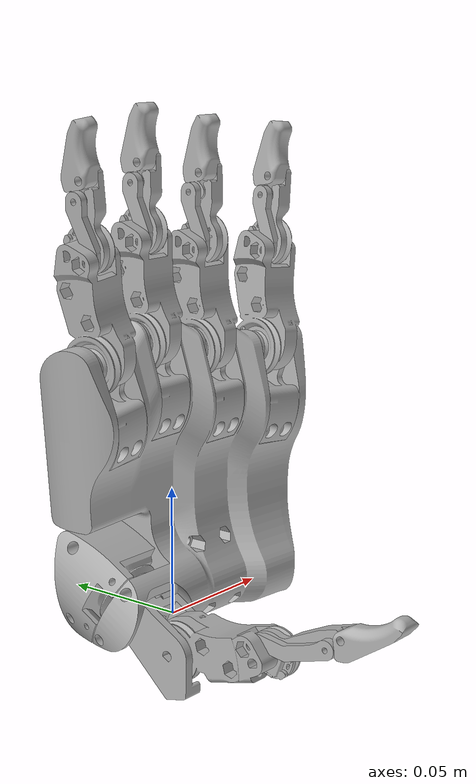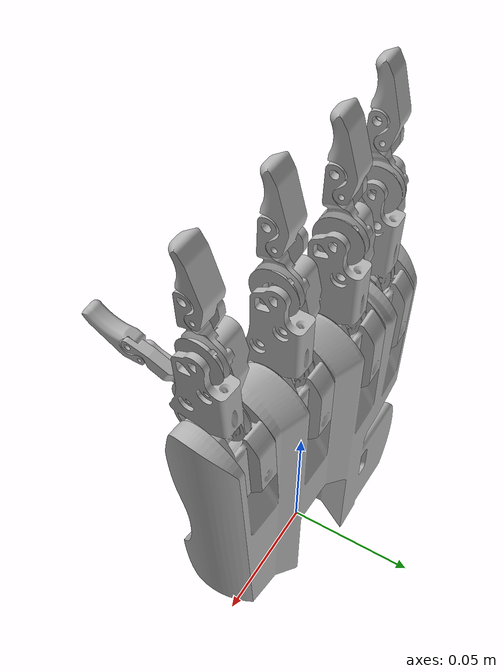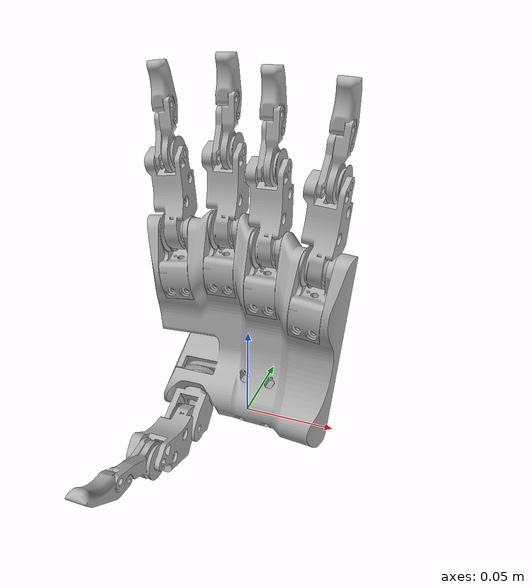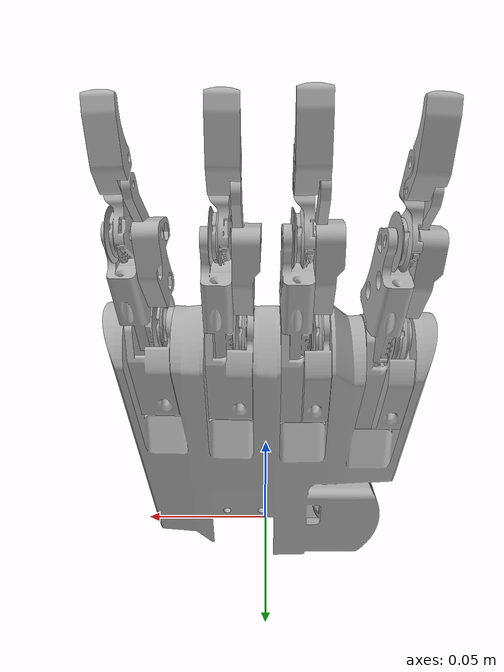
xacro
<?xml version="1.0" ?>
<robot name="New_URDF_export" xmlns:xacro="http://www.ros.org/wiki/xacro">

<xacro:include filename="$(find New_URDF_export_description)/urdf/materials.xacro" />
<xacro:include filename="$(find New_URDF_export_description)/urdf/New_URDF_export.trans" />
<xacro:include filename="$(find New_URDF_export_description)/urdf/New_URDF_export.gazebo" />
<link name="base_link">
  <inertial>
    <origin xyz="0.002745169725245046 -0.0008366364864162769 0.050206070448823796" rpy="0 0 0"/>
    <mass value="0.2414972480343464"/>
    <inertia ixx="0.000237" iyy="0.000426" izz="0.000234" ixy="3.4e-05" iyz="-7e-06" ixz="2.7e-05"/>
  </inertial>
  <visual>
    <origin xyz="0 0 0" rpy="0 0 0"/>
    <geometry>
      <mesh filename="package://New_URDF_export_description/meshes/base_link.stl" scale="0.001 0.001 0.001"/>
    </geometry>
    <material name="silver"/>
  </visual>
  <collision>
    <origin xyz="0 0 0" rpy="0 0 0"/>
    <geometry>
      <mesh filename="package://New_URDF_export_description/meshes/base_link.stl" scale="0.001 0.001 0.001"/>
    </geometry>
  </collision>
</link>

<link name="Component24_1">
  <inertial>
    <origin xyz="-0.002025427836878528 0.008912288892098434 0.012353450951799974" rpy="0 0 0"/>
    <mass value="0.012258638602964354"/>
    <inertia ixx="2e-06" iyy="1e-06" izz="1e-06" ixy="0.0" iyz="-0.0" ixz="0.0"/>
  </inertial>
  <visual>
    <origin xyz="0.03682 0.005982 -0.074" rpy="0 0 0"/>
    <geometry>
      <mesh filename="package://New_URDF_export_description/meshes/Component24_1.stl" scale="0.001 0.001 0.001"/>
    </geometry>
    <material name="silver"/>
  </visual>
  <collision>
    <origin xyz="0.03682 0.005982 -0.074" rpy="0 0 0"/>
    <geometry>
      <mesh filename="package://New_URDF_export_description/meshes/Component24_1.stl" scale="0.001 0.001 0.001"/>
    </geometry>
  </collision>
</link>

<link name="Component25_1">
  <inertial>
    <origin xyz="-0.00047467160594175453 0.00903509191680997 0.012421508407421775" rpy="0 0 0"/>
    <mass value="0.012258632723785344"/>
    <inertia ixx="2e-06" iyy="1e-06" izz="1e-06" ixy="0.0" iyz="-0.0" ixz="-0.0"/>
  </inertial>
  <visual>
    <origin xyz="0.012395 0.004776 -0.079" rpy="0 0 0"/>
    <geometry>
      <mesh filename="package://New_URDF_export_description/meshes/Component25_1.stl" scale="0.001 0.001 0.001"/>
    </geometry>
    <material name="silver"/>
  </visual>
  <collision>
    <origin xyz="0.012395 0.004776 -0.079" rpy="0 0 0"/>
    <geometry>
      <mesh filename="package://New_URDF_export_description/meshes/Component25_1.stl" scale="0.001 0.001 0.001"/>
    </geometry>
  </collision>
</link>

<link name="Component1_1">
  <inertial>
    <origin xyz="0.004123666960496847 0.0011067029414736289 0.01723038194941895" rpy="0 0 0"/>
    <mass value="0.011115907596850922"/>
    <inertia ixx="2e-06" iyy="2e-06" izz="1e-06" ixy="0.0" iyz="-0.0" ixz="0.0"/>
  </inertial>
  <visual>
    <origin xyz="0.045725 0.001547 -0.104372" rpy="0 0 0"/>
    <geometry>
      <mesh filename="package://New_URDF_export_description/meshes/Component1_1.stl" scale="0.001 0.001 0.001"/>
    </geometry>
    <material name="silver"/>
  </visual>
  <collision>
    <origin xyz="0.045725 0.001547 -0.104372" rpy="0 0 0"/>
    <geometry>
      <mesh filename="package://New_URDF_export_description/meshes/Component1_1.stl" scale="0.001 0.001 0.001"/>
    </geometry>
  </collision>
</link>

<link name="Component3_1">
  <inertial>
    <origin xyz="-0.0036945196042365014 -0.0016865936108732698 0.0046870721481248045" rpy="0 0 0"/>
    <mass value="0.0019033331833639964"/>
    <inertia ixx="1e-06" iyy="1e-06" izz="1e-06" ixy="-0.0" iyz="0.0" ixz="0.0"/>
  </inertial>
  <visual>
    <origin xyz="0.038333 -0.001675 -0.145192" rpy="0 0 0"/>
    <geometry>
      <mesh filename="package://New_URDF_export_description/meshes/Component3_1.stl" scale="0.001 0.001 0.001"/>
    </geometry>
    <material name="silver"/>
  </visual>
  <collision>
    <origin xyz="0.038333 -0.001675 -0.145192" rpy="0 0 0"/>
    <geometry>
      <mesh filename="package://New_URDF_export_description/meshes/Component3_1.stl" scale="0.001 0.001 0.001"/>
    </geometry>
  </collision>
</link>

<link name="Component4_1">
  <inertial>
    <origin xyz="0.0006578043440388093 0.002756298934102463 0.01152316144300558" rpy="0 0 0"/>
    <mass value="0.0005553551144173429"/>
    <inertia ixx="1e-06" iyy="1e-06" izz="1e-06" ixy="0.0" iyz="-0.0" ixz="0.0"/>
  </inertial>
  <visual>
    <origin xyz="0.048197 0.004381 -0.1414" rpy="0 0 0"/>
    <geometry>
      <mesh filename="package://New_URDF_export_description/meshes/Component4_1.stl" scale="0.001 0.001 0.001"/>
    </geometry>
    <material name="silver"/>
  </visual>
  <collision>
    <origin xyz="0.048197 0.004381 -0.1414" rpy="0 0 0"/>
    <geometry>
      <mesh filename="package://New_URDF_export_description/meshes/Component4_1.stl" scale="0.001 0.001 0.001"/>
    </geometry>
  </collision>
</link>

<link name="Component2_1">
  <inertial>
    <origin xyz="-0.0027029859176378873 0.0015940781015286818 0.005832015574820604" rpy="0 0 0"/>
    <mass value="0.002314232689912895"/>
    <inertia ixx="1e-06" iyy="1e-06" izz="1e-06" ixy="-0.0" iyz="0.0" ixz="0.0"/>
  </inertial>
  <visual>
    <origin xyz="0.043365 0.001935 -0.169617" rpy="0 0 0"/>
    <geometry>
      <mesh filename="package://New_URDF_export_description/meshes/Component2_1.stl" scale="0.001 0.001 0.001"/>
    </geometry>
    <material name="silver"/>
  </visual>
  <collision>
    <origin xyz="0.043365 0.001935 -0.169617" rpy="0 0 0"/>
    <geometry>
      <mesh filename="package://New_URDF_export_description/meshes/Component2_1.stl" scale="0.001 0.001 0.001"/>
    </geometry>
  </collision>
</link>

<link name="Component6_1">
  <inertial>
    <origin xyz="0.00566097044583895 0.0009279303593809061 0.01679880692646306" rpy="0 0 0"/>
    <mass value="0.011115905659210518"/>
    <inertia ixx="2e-06" iyy="2e-06" izz="1e-06" ixy="-0.0" iyz="-0.0" ixz="0.0"/>
  </inertial>
  <visual>
    <origin xyz="0.018401 -0.001121 -0.10823" rpy="0 0 0"/>
    <geometry>
      <mesh filename="package://New_URDF_export_description/meshes/Component6_1.stl" scale="0.001 0.001 0.001"/>
    </geometry>
    <material name="silver"/>
  </visual>
  <collision>
    <origin xyz="0.018401 -0.001121 -0.10823" rpy="0 0 0"/>
    <geometry>
      <mesh filename="package://New_URDF_export_description/meshes/Component6_1.stl" scale="0.001 0.001 0.001"/>
    </geometry>
  </collision>
</link>

<link name="Component7_1">
  <inertial>
    <origin xyz="-0.003330077463916883 -0.002411105311378465 0.00677198635006096" rpy="0 0 0"/>
    <mass value="0.0019033352750190097"/>
    <inertia ixx="1e-06" iyy="1e-06" izz="1e-06" ixy="0.0" iyz="0.0" ixz="-0.0"/>
  </inertial>
  <visual>
    <origin xyz="0.007348 -0.004975 -0.14646" rpy="0 0 0"/>
    <geometry>
      <mesh filename="package://New_URDF_export_description/meshes/Component7_1.stl" scale="0.001 0.001 0.001"/>
    </geometry>
    <material name="silver"/>
  </visual>
  <collision>
    <origin xyz="0.007348 -0.004975 -0.14646" rpy="0 0 0"/>
    <geometry>
      <mesh filename="package://New_URDF_export_description/meshes/Component7_1.stl" scale="0.001 0.001 0.001"/>
    </geometry>
  </collision>
</link>

<link name="Component8_1">
  <inertial>
    <origin xyz="0.0014771000853101325 0.0018048088171991965 0.013173422015586855" rpy="0 0 0"/>
    <mass value="0.0005553551398376143"/>
    <inertia ixx="1e-06" iyy="1e-06" izz="1e-06" ixy="-0.0" iyz="-0.0" ixz="-0.0"/>
  </inertial>
  <visual>
    <origin xyz="0.017807 0.000565 -0.143581" rpy="0 0 0"/>
    <geometry>
      <mesh filename="package://New_URDF_export_description/meshes/Component8_1.stl" scale="0.001 0.001 0.001"/>
    </geometry>
    <material name="silver"/>
  </visual>
  <collision>
    <origin xyz="0.017807 0.000565 -0.143581" rpy="0 0 0"/>
    <geometry>
      <mesh filename="package://New_URDF_export_description/meshes/Component8_1.stl" scale="0.001 0.001 0.001"/>
    </geometry>
  </collision>
</link>

<link name="Component5_1">
  <inertial>
    <origin xyz="-0.0020740129128638523 0.0008162221421355227 0.007803938698609875" rpy="0 0 0"/>
    <mass value="0.0023142301158833177"/>
    <inertia ixx="1e-06" iyy="1e-06" izz="1e-06" ixy="-0.0" iyz="0.0" ixz="0.0"/>
  </inertial>
  <visual>
    <origin xyz="0.010413 -0.001689 -0.171254" rpy="0 0 0"/>
    <geometry>
      <mesh filename="package://New_URDF_export_description/meshes/Component5_1.stl" scale="0.001 0.001 0.001"/>
    </geometry>
    <material name="silver"/>
  </visual>
  <collision>
    <origin xyz="0.010413 -0.001689 -0.171254" rpy="0 0 0"/>
    <geometry>
      <mesh filename="package://New_URDF_export_description/meshes/Component5_1.stl" scale="0.001 0.001 0.001"/>
    </geometry>
  </collision>
</link>

<link name="Component23_1">
  <inertial>
    <origin xyz="-2.0638533683621507e-06 0.009047541745378881 0.012421521638297225" rpy="0 0 0"/>
    <mass value="0.012258643235752422"/>
    <inertia ixx="2e-06" iyy="1e-06" izz="1e-06" ixy="0.0" iyz="-0.0" ixz="-0.0"/>
  </inertial>
  <visual>
    <origin xyz="-0.012244 0.010538 -0.074" rpy="0 0 0"/>
    <geometry>
      <mesh filename="package://New_URDF_export_description/meshes/Component23_1.stl" scale="0.001 0.001 0.001"/>
    </geometry>
    <material name="silver"/>
  </visual>
  <collision>
    <origin xyz="-0.012244 0.010538 -0.074" rpy="0 0 0"/>
    <geometry>
      <mesh filename="package://New_URDF_export_description/meshes/Component23_1.stl" scale="0.001 0.001 0.001"/>
    </geometry>
  </collision>
</link>

<link name="Component9_1">
  <inertial>
    <origin xyz="0.005701732164497237 0.0006306105204934537 0.016798808882961966" rpy="0 0 0"/>
    <mass value="0.011115903436385853"/>
    <inertia ixx="2e-06" iyy="2e-06" izz="1e-06" ixy="-0.0" iyz="-0.0" ixz="0.0"/>
  </inertial>
  <visual>
    <origin xyz="-0.006554 0.004335 -0.10323" rpy="0 0 0"/>
    <geometry>
      <mesh filename="package://New_URDF_export_description/meshes/Component9_1.stl" scale="0.001 0.001 0.001"/>
    </geometry>
    <material name="silver"/>
  </visual>
  <collision>
    <origin xyz="-0.006554 0.004335 -0.10323" rpy="0 0 0"/>
    <geometry>
      <mesh filename="package://New_URDF_export_description/meshes/Component9_1.stl" scale="0.001 0.001 0.001"/>
    </geometry>
  </collision>
</link>

<link name="Component11_1">
  <inertial>
    <origin xyz="-0.003451516209980696 -0.002233278304004958 0.006772092134296276" rpy="0 0 0"/>
    <mass value="0.0019033302628551495"/>
    <inertia ixx="1e-06" iyy="1e-06" izz="1e-06" ixy="-0.0" iyz="0.0" ixz="-0.0"/>
  </inertial>
  <visual>
    <origin xyz="-0.017741 0.003063 -0.141526" rpy="0 0 0"/>
    <geometry>
      <mesh filename="package://New_URDF_export_description/meshes/Component11_1.stl" scale="0.001 0.001 0.001"/>
    </geometry>
    <material name="silver"/>
  </visual>
  <collision>
    <origin xyz="-0.017741 0.003063 -0.141526" rpy="0 0 0"/>
    <geometry>
      <mesh filename="package://New_URDF_export_description/meshes/Component11_1.stl" scale="0.001 0.001 0.001"/>
    </geometry>
  </collision>
</link>

<link name="Component12_1">
  <inertial>
    <origin xyz="0.0019193155174742028 0.0017153164675866401 0.013173421980118394" rpy="0 0 0"/>
    <mass value="0.0005553551425762632"/>
    <inertia ixx="1e-06" iyy="1e-06" izz="1e-06" ixy="-0.0" iyz="-0.0" ixz="-0.0"/>
  </inertial>
  <visual>
    <origin xyz="-0.007059 0.006049 -0.138581" rpy="0 0 0"/>
    <geometry>
      <mesh filename="package://New_URDF_export_description/meshes/Component12_1.stl" scale="0.001 0.001 0.001"/>
    </geometry>
    <material name="silver"/>
  </visual>
  <collision>
    <origin xyz="-0.007059 0.006049 -0.138581" rpy="0 0 0"/>
    <geometry>
      <mesh filename="package://New_URDF_export_description/meshes/Component12_1.stl" scale="0.001 0.001 0.001"/>
    </geometry>
  </collision>
</link>

<link name="Component10_1">
  <inertial>
    <origin xyz="-0.0019760427506178378 0.002921812974273479 0.007738009794912598" rpy="0 0 0"/>
    <mass value="0.002314230055006617"/>
    <inertia ixx="1e-06" iyy="1e-06" izz="1e-06" ixy="-0.0" iyz="0.0" ixz="0.0"/>
  </inertial>
  <visual>
    <origin xyz="-0.014456 0.008182 -0.166386" rpy="0 0 0"/>
    <geometry>
      <mesh filename="package://New_URDF_export_description/meshes/Component10_1.stl" scale="0.001 0.001 0.001"/>
    </geometry>
    <material name="silver"/>
  </visual>
  <collision>
    <origin xyz="-0.014456 0.008182 -0.166386" rpy="0 0 0"/>
    <geometry>
      <mesh filename="package://New_URDF_export_description/meshes/Component10_1.stl" scale="0.001 0.001 0.001"/>
    </geometry>
  </collision>
</link>

<link name="Component26_1">
  <inertial>
    <origin xyz="0.0017077083126936718 0.008921936521695406 0.012395043734201833" rpy="0 0 0"/>
    <mass value="0.012258648483931921"/>
    <inertia ixx="2e-06" iyy="1e-06" izz="1e-06" ixy="0.0" iyz="-0.0" ixz="-0.0"/>
  </inertial>
  <visual>
    <origin xyz="-0.036778 0.017064 -0.069" rpy="0 0 0"/>
    <geometry>
      <mesh filename="package://New_URDF_export_description/meshes/Component26_1.stl" scale="0.001 0.001 0.001"/>
    </geometry>
    <material name="silver"/>
  </visual>
  <collision>
    <origin xyz="-0.036778 0.017064 -0.069" rpy="0 0 0"/>
    <geometry>
      <mesh filename="package://New_URDF_export_description/meshes/Component26_1.stl" scale="0.001 0.001 0.001"/>
    </geometry>
  </collision>
</link>

<link name="Component13_1">
  <inertial>
    <origin xyz="0.007167652452317742 9.303680224181932e-05 0.016239452546972163" rpy="0 0 0"/>
    <mass value="0.011115905543319208"/>
    <inertia ixx="2e-06" iyy="2e-06" izz="1e-06" ixy="-0.0" iyz="-0.0" ixz="-0.0"/>
  </inertial>
  <visual>
    <origin xyz="-0.034157 0.011667 -0.100392" rpy="0 0 0"/>
    <geometry>
      <mesh filename="package://New_URDF_export_description/meshes/Component13_1.stl" scale="0.001 0.001 0.001"/>
    </geometry>
    <material name="silver"/>
  </visual>
  <collision>
    <origin xyz="-0.034157 0.011667 -0.100392" rpy="0 0 0"/>
    <geometry>
      <mesh filename="package://New_URDF_export_description/meshes/Component13_1.stl" scale="0.001 0.001 0.001"/>
    </geometry>
  </collision>
</link>

<link name="Component17_1">
  <inertial>
    <origin xyz="-0.0027656231817524343 -0.0011316368308406152 0.005252369213118613" rpy="0 0 0"/>
    <mass value="0.0019033246740478476"/>
    <inertia ixx="1e-06" iyy="1e-06" izz="1e-06" ixy="-0.0" iyz="0.0" ixz="-0.0"/>
  </inertial>
  <visual>
    <origin xyz="-0.048936 0.010446 -0.139268" rpy="0 0 0"/>
    <geometry>
      <mesh filename="package://New_URDF_export_description/meshes/Component17_1.stl" scale="0.001 0.001 0.001"/>
    </geometry>
    <material name="silver"/>
  </visual>
  <collision>
    <origin xyz="-0.048936 0.010446 -0.139268" rpy="0 0 0"/>
    <geometry>
      <mesh filename="package://New_URDF_export_description/meshes/Component17_1.stl" scale="0.001 0.001 0.001"/>
    </geometry>
  </collision>
</link>

<link name="Component18_1">
  <inertial>
    <origin xyz="0.0031050093271399043 0.0024096864286983315 0.011196454087814722" rpy="0 0 0"/>
    <mass value="0.0005553551392437952"/>
    <inertia ixx="1e-06" iyy="1e-06" izz="1e-06" ixy="-0.0" iyz="-0.0" ixz="-0.0"/>
  </inertial>
  <visual>
    <origin xyz="-0.037671 0.014649 -0.137324" rpy="0 0 0"/>
    <geometry>
      <mesh filename="package://New_URDF_export_description/meshes/Component18_1.stl" scale="0.001 0.001 0.001"/>
    </geometry>
    <material name="silver"/>
  </visual>
  <collision>
    <origin xyz="-0.037671 0.014649 -0.137324" rpy="0 0 0"/>
    <geometry>
      <mesh filename="package://New_URDF_export_description/meshes/Component18_1.stl" scale="0.001 0.001 0.001"/>
    </geometry>
  </collision>
</link>

<link name="Component16_1">
  <inertial>
    <origin xyz="-0.0016358581286405743 0.001967218457827354 0.006215753454319822" rpy="0 0 0"/>
    <mass value="0.00231422981504397"/>
    <inertia ixx="1e-06" iyy="1e-06" izz="1e-06" ixy="0.0" iyz="0.0" ixz="-0.0"/>
  </inertial>
  <visual>
    <origin xyz="-0.048251 0.013599 -0.16419" rpy="0 0 0"/>
    <geometry>
      <mesh filename="package://New_URDF_export_description/meshes/Component16_1.stl" scale="0.001 0.001 0.001"/>
    </geometry>
    <material name="silver"/>
  </visual>
  <collision>
    <origin xyz="-0.048251 0.013599 -0.16419" rpy="0 0 0"/>
    <geometry>
      <mesh filename="package://New_URDF_export_description/meshes/Component16_1.stl" scale="0.001 0.001 0.001"/>
    </geometry>
  </collision>
</link>

<link name="Component21_1">
  <inertial>
    <origin xyz="-0.00047480998905378297 -0.001597778345875104 -0.002161180387733535" rpy="0 0 0"/>
    <mass value="0.01141105059764941"/>
    <inertia ixx="3e-06" iyy="1e-06" izz="2e-06" ixy="-0.0" iyz="-1e-06" ixz="-0.0"/>
  </inertial>
  <visual>
    <origin xyz="0.027 0.010587 -0.01105" rpy="0 0 0"/>
    <geometry>
      <mesh filename="package://New_URDF_export_description/meshes/Component21_1.stl" scale="0.001 0.001 0.001"/>
    </geometry>
    <material name="silver"/>
  </visual>
  <collision>
    <origin xyz="0.027 0.010587 -0.01105" rpy="0 0 0"/>
    <geometry>
      <mesh filename="package://New_URDF_export_description/meshes/Component21_1.stl" scale="0.001 0.001 0.001"/>
    </geometry>
  </collision>
</link>

<link name="Component15_1">
  <inertial>
    <origin xyz="0.005669628334297228 -0.014763771795247582 0.004508016238325537" rpy="0 0 0"/>
    <mass value="0.011043346797995797"/>
    <inertia ixx="2e-06" iyy="1e-06" izz="2e-06" ixy="-0.0" iyz="0.0" ixz="0.0"/>
  </inertial>
  <visual>
    <origin xyz="0.0327 0.029553 -0.0001" rpy="0 0 0"/>
    <geometry>
      <mesh filename="package://New_URDF_export_description/meshes/Component15_1.stl" scale="0.001 0.001 0.001"/>
    </geometry>
    <material name="silver"/>
  </visual>
  <collision>
    <origin xyz="0.0327 0.029553 -0.0001" rpy="0 0 0"/>
    <geometry>
      <mesh filename="package://New_URDF_export_description/meshes/Component15_1.stl" scale="0.001 0.001 0.001"/>
    </geometry>
  </collision>
</link>

<link name="Component19_1">
  <inertial>
    <origin xyz="-0.003296225590801106 -0.006582898875138021 0.005592010280368742" rpy="0 0 0"/>
    <mass value="0.002531144718261794"/>
    <inertia ixx="1e-06" iyy="1e-06" izz="1e-06" ixy="0.0" iyz="0.0" ixz="-0.0"/>
  </inertial>
  <visual>
    <origin xyz="0.02155 0.068871 -0.007911" rpy="0 0 0"/>
    <geometry>
      <mesh filename="package://New_URDF_export_description/meshes/Component19_1.stl" scale="0.001 0.001 0.001"/>
    </geometry>
    <material name="silver"/>
  </visual>
  <collision>
    <origin xyz="0.02155 0.068871 -0.007911" rpy="0 0 0"/>
    <geometry>
      <mesh filename="package://New_URDF_export_description/meshes/Component19_1.stl" scale="0.001 0.001 0.001"/>
    </geometry>
  </collision>
</link>

<link name="Component14_1">
  <inertial>
    <origin xyz="0.0018930116944578766 -0.014614922867036959 0.0029856270141793064" rpy="0 0 0"/>
    <mass value="0.0007523194454609623"/>
    <inertia ixx="1e-06" iyy="1e-06" izz="1e-06" ixy="0.0" iyz="0.0" ixz="-0.0"/>
  </inertial>
  <visual>
    <origin xyz="0.03215 0.064728 -0.01225" rpy="0 0 0"/>
    <geometry>
      <mesh filename="package://New_URDF_export_description/meshes/Component14_1.stl" scale="0.001 0.001 0.001"/>
    </geometry>
    <material name="silver"/>
  </visual>
  <collision>
    <origin xyz="0.03215 0.064728 -0.01225" rpy="0 0 0"/>
    <geometry>
      <mesh filename="package://New_URDF_export_description/meshes/Component14_1.stl" scale="0.001 0.001 0.001"/>
    </geometry>
  </collision>
</link>

<link name="Component20_1">
  <inertial>
    <origin xyz="-0.0019457264466740815 -0.008167025756820878 0.0011558588435874387" rpy="0 0 0"/>
    <mass value="0.0026899841295638023"/>
    <inertia ixx="1e-06" iyy="1e-06" izz="1e-06" ixy="-0.0" iyz="0.0" ixz="0.0"/>
  </inertial>
  <visual>
    <origin xyz="0.0247 0.099018 -0.023499" rpy="0 0 0"/>
    <geometry>
      <mesh filename="package://New_URDF_export_description/meshes/Component20_1.stl" scale="0.001 0.001 0.001"/>
    </geometry>
    <material name="silver"/>
  </visual>
  <collision>
    <origin xyz="0.0247 0.099018 -0.023499" rpy="0 0 0"/>
    <geometry>
      <mesh filename="package://New_URDF_export_description/meshes/Component20_1.stl" scale="0.001 0.001 0.001"/>
    </geometry>
  </collision>
</link>

<joint name="Rigid 31" type="fixed">
  <origin xyz="-0.03682 -0.005982 0.074" rpy="0 0 0"/>
  <parent link="base_link"/>
  <child link="Component24_1"/>
</joint>

<joint name="Rigid 32" type="fixed">
  <origin xyz="-0.012395 -0.004776 0.079" rpy="0 0 0"/>
  <parent link="base_link"/>
  <child link="Component25_1"/>
</joint>

<joint name="Revolute 33" type="revolute">
  <origin xyz="-0.008905 0.004435 0.030372" rpy="0 0 0"/>
  <parent link="Component24_1"/>
  <child link="Component1_1"/>
  <axis xyz="0.993124 0.078161 0.087156"/>
  <limit upper="1.745329" lower="0.0" effort="100" velocity="100"/>
</joint>

<joint name="Revolute 34" type="revolute">
  <origin xyz="0.007392 0.003222 0.04082" rpy="0 0 0"/>
  <parent link="Component1_1"/>
  <child link="Component3_1"/>
  <axis xyz="0.993124 0.078161 0.087156"/>
  <limit upper="1.745329" lower="0.0" effort="100" velocity="100"/>
</joint>

<joint name="Revolute 35" type="revolute">
  <origin xyz="-0.002472 -0.002834 0.037028" rpy="0 0 0"/>
  <parent link="Component1_1"/>
  <child link="Component4_1"/>
  <axis xyz="0.993124 0.078161 0.087156"/>
  <limit upper="2.094395" lower="0.0" effort="100" velocity="100"/>
</joint>

<joint name="Revolute 36" type="revolute">
  <origin xyz="-0.005032 -0.00361 0.024425" rpy="0 0 0"/>
  <parent link="Component3_1"/>
  <child link="Component2_1"/>
  <axis xyz="-0.993124 -0.078161 -0.087156"/>
  <limit upper="0.0" lower="-1.745329" effort="100" velocity="100"/>
</joint>

<joint name="Revolute 37" type="revolute">
  <origin xyz="-0.006006 0.005897 0.02923" rpy="0 0 0"/>
  <parent link="Component25_1"/>
  <child link="Component6_1"/>
  <axis xyz="0.999657 0.026177 0.0"/>
  <limit upper="1.745329" lower="0.0" effort="100" velocity="100"/>
</joint>

<joint name="Revolute 38" type="revolute">
  <origin xyz="0.011053 0.003854 0.03823" rpy="0 0 0"/>
  <parent link="Component6_1"/>
  <child link="Component7_1"/>
  <axis xyz="0.999657 0.026177 0.0"/>
  <limit upper="1.745329" lower="0.0" effort="100" velocity="100"/>
</joint>

<joint name="Revolute 39" type="revolute">
  <origin xyz="0.000594 -0.001686 0.035351" rpy="0 0 0"/>
  <parent link="Component6_1"/>
  <child link="Component8_1"/>
  <axis xyz="0.999657 0.026177 0.0"/>
  <limit upper="2.094395" lower="0.0" effort="100" velocity="100"/>
</joint>

<joint name="Revolute 40" type="revolute">
  <origin xyz="-0.003065 -0.003286 0.024794" rpy="0 0 0"/>
  <parent link="Component7_1"/>
  <child link="Component5_1"/>
  <axis xyz="-0.999657 -0.026177 -0.0"/>
  <limit upper="0.0" lower="-1.745329" effort="100" velocity="100"/>
</joint>

<joint name="Rigid 41" type="fixed">
  <origin xyz="0.012244 -0.010538 0.074" rpy="0 0 0"/>
  <parent link="base_link"/>
  <child link="Component23_1"/>
</joint>

<joint name="Revolute 42" type="revolute">
  <origin xyz="-0.00569 0.006203 0.02923" rpy="0 0 0"/>
  <parent link="Component23_1"/>
  <child link="Component9_1"/>
  <axis xyz="0.999657 -0.026177 0.0"/>
  <limit upper="1.745329" lower="0.0" effort="100" velocity="100"/>
</joint>

<joint name="Revolute 43" type="revolute">
  <origin xyz="0.011187 0.001272 0.038296" rpy="0 0 0"/>
  <parent link="Component9_1"/>
  <child link="Component11_1"/>
  <axis xyz="0.999657 -0.026177 0.0"/>
  <limit upper="1.745329" lower="0.0" effort="100" velocity="100"/>
</joint>

<joint name="Revolute 44" type="revolute">
  <origin xyz="0.000505 -0.001714 0.035351" rpy="0 0 0"/>
  <parent link="Component9_1"/>
  <child link="Component12_1"/>
  <axis xyz="0.999657 -0.026177 0.0"/>
  <limit upper="2.094395" lower="0.0" effort="100" velocity="100"/>
</joint>

<joint name="Revolute 45" type="revolute">
  <origin xyz="-0.003285 -0.005119 0.02486" rpy="0 0 0"/>
  <parent link="Component11_1"/>
  <child link="Component10_1"/>
  <axis xyz="-0.999657 0.026177 -0.0"/>
  <limit upper="0.0" lower="-1.745329" effort="100" velocity="100"/>
</joint>

<joint name="Rigid 46" type="fixed">
  <origin xyz="0.036778 -0.017064 0.069" rpy="0 0 0"/>
  <parent link="base_link"/>
  <child link="Component26_1"/>
</joint>

<joint name="Revolute 47" type="revolute">
  <origin xyz="-0.002621 0.005397 0.031392" rpy="0 0 0"/>
  <parent link="Component26_1"/>
  <child link="Component13_1"/>
  <axis xyz="0.991608 -0.095481 -0.087156"/>
  <limit upper="1.745329" lower="0.0" effort="100" velocity="100"/>
</joint>

<joint name="Revolute 48" type="revolute">
  <origin xyz="0.014779 0.001221 0.038876" rpy="0 0 0"/>
  <parent link="Component13_1"/>
  <child link="Component17_1"/>
  <axis xyz="0.991608 -0.095481 -0.087156"/>
  <limit upper="1.745329" lower="0.0" effort="100" velocity="100"/>
</joint>

<joint name="Revolute 49" type="revolute">
  <origin xyz="0.003514 -0.002982 0.036932" rpy="0 0 0"/>
  <parent link="Component13_1"/>
  <child link="Component18_1"/>
  <axis xyz="0.991608 -0.095481 -0.087156"/>
  <limit upper="2.094395" lower="0.0" effort="100" velocity="100"/>
</joint>

<joint name="Revolute 50" type="revolute">
  <origin xyz="-0.000685 -0.003153 0.024922" rpy="0 0 0"/>
  <parent link="Component17_1"/>
  <child link="Component16_1"/>
  <axis xyz="-0.991608 0.095481 0.087156"/>
  <limit upper="0.0" lower="-1.745329" effort="100" velocity="100"/>
</joint>

<joint name="Revolute 51" type="revolute">
  <origin xyz="-0.027 -0.010587 0.01105" rpy="0 0 0"/>
  <parent link="base_link"/>
  <child link="Component21_1"/>
  <axis xyz="-0.0 0.866025 0.5"/>
  <limit upper="1.047198" lower="-0.349066" effort="100" velocity="100"/>
</joint>

<joint name="Revolute 52" type="revolute">
  <origin xyz="-0.0057 -0.018966 -0.01095" rpy="0 0 0"/>
  <parent link="Component21_1"/>
  <child link="Component15_1"/>
  <axis xyz="-1.0 0.0 -0.0"/>
  <limit upper="0.698132" lower="-0.349066" effort="100" velocity="100"/>
</joint>

<joint name="Revolute 53" type="revolute">
  <origin xyz="0.01115 -0.039318 0.007811" rpy="0 0 0"/>
  <parent link="Component15_1"/>
  <child link="Component19_1"/>
  <axis xyz="-1.0 0.0 -0.0"/>
  <limit upper="1.745329" lower="0.0" effort="100" velocity="100"/>
</joint>

<joint name="Revolute 54" type="revolute">
  <origin xyz="0.00055 -0.035175 0.01215" rpy="0 0 0"/>
  <parent link="Component15_1"/>
  <child link="Component14_1"/>
  <axis xyz="-1.0 0.0 -0.0"/>
  <limit upper="2.094395" lower="0.0" effort="100" velocity="100"/>
</joint>

<joint name="Revolute 55" type="revolute">
  <origin xyz="-0.00315 -0.030147 0.015588" rpy="0 0 0"/>
  <parent link="Component19_1"/>
  <child link="Component20_1"/>
  <axis xyz="1.0 -0.0 0.0"/>
  <limit upper="0.0" lower="-1.745329" effort="100" velocity="100"/>
</joint>

</robot>

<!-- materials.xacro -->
<robot name="New_URDF_export" xmlns:xacro="http://www.ros.org/wiki/xacro" >

<material name="silver">
  <color rgba="0.700 0.700 0.700 1.000"/>
</material>

</robot>

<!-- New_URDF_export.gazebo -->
<robot name="New_URDF_export" xmlns:xacro="http://www.ros.org/wiki/xacro" >

<xacro:property name="body_color" value="Gazebo/Silver" />

<gazebo>
  <plugin name="control" filename="libgazebo_ros_control.so"/>
</gazebo>
<gazebo reference="base_link">
  <material>${body_color}</material>
  <mu1>0.2</mu1>
  <mu2>0.2</mu2>
  <selfCollide>true</selfCollide>
  <gravity>true</gravity>
</gazebo>

<gazebo reference="Component24_1">
  <material>${body_color}</material>
  <mu1>0.2</mu1>
  <mu2>0.2</mu2>
  <selfCollide>true</selfCollide>
</gazebo>

<gazebo reference="Component25_1">
  <material>${body_color}</material>
  <mu1>0.2</mu1>
  <mu2>0.2</mu2>
  <selfCollide>true</selfCollide>
</gazebo>

<gazebo reference="Component1_1">
  <material>${body_color}</material>
  <mu1>0.2</mu1>
  <mu2>0.2</mu2>
  <selfCollide>true</selfCollide>
</gazebo>

<gazebo reference="Component3_1">
  <material>${body_color}</material>
  <mu1>0.2</mu1>
  <mu2>0.2</mu2>
  <selfCollide>true</selfCollide>
</gazebo>

<gazebo reference="Component4_1">
  <material>${body_color}</material>
  <mu1>0.2</mu1>
  <mu2>0.2</mu2>
  <selfCollide>true</selfCollide>
</gazebo>

<gazebo reference="Component2_1">
  <material>${body_color}</material>
  <mu1>0.2</mu1>
  <mu2>0.2</mu2>
  <selfCollide>true</selfCollide>
</gazebo>

<gazebo reference="Component6_1">
  <material>${body_color}</material>
  <mu1>0.2</mu1>
  <mu2>0.2</mu2>
  <selfCollide>true</selfCollide>
</gazebo>

<gazebo reference="Component7_1">
  <material>${body_color}</material>
  <mu1>0.2</mu1>
  <mu2>0.2</mu2>
  <selfCollide>true</selfCollide>
</gazebo>

<gazebo reference="Component8_1">
  <material>${body_color}</material>
  <mu1>0.2</mu1>
  <mu2>0.2</mu2>
  <selfCollide>true</selfCollide>
</gazebo>

<gazebo reference="Component5_1">
  <material>${body_color}</material>
  <mu1>0.2</mu1>
  <mu2>0.2</mu2>
  <selfCollide>true</selfCollide>
</gazebo>

<gazebo reference="Component23_1">
  <material>${body_color}</material>
  <mu1>0.2</mu1>
  <mu2>0.2</mu2>
  <selfCollide>true</selfCollide>
</gazebo>

<gazebo reference="Component9_1">
  <material>${body_color}</material>
  <mu1>0.2</mu1>
  <mu2>0.2</mu2>
  <selfCollide>true</selfCollide>
</gazebo>

<gazebo reference="Component11_1">
  <material>${body_color}</material>
  <mu1>0.2</mu1>
  <mu2>0.2</mu2>
  <selfCollide>true</selfCollide>
</gazebo>

<gazebo reference="Component12_1">
  <material>${body_color}</material>
  <mu1>0.2</mu1>
  <mu2>0.2</mu2>
  <selfCollide>true</selfCollide>
</gazebo>

<gazebo reference="Component10_1">
  <material>${body_color}</material>
  <mu1>0.2</mu1>
  <mu2>0.2</mu2>
  <selfCollide>true</selfCollide>
</gazebo>

<gazebo reference="Component26_1">
  <material>${body_color}</material>
  <mu1>0.2</mu1>
  <mu2>0.2</mu2>
  <selfCollide>true</selfCollide>
</gazebo>

<gazebo reference="Component13_1">
  <material>${body_color}</material>
  <mu1>0.2</mu1>
  <mu2>0.2</mu2>
  <selfCollide>true</selfCollide>
</gazebo>

<gazebo reference="Component17_1">
  <material>${body_color}</material>
  <mu1>0.2</mu1>
  <mu2>0.2</mu2>
  <selfCollide>true</selfCollide>
</gazebo>

<gazebo reference="Component18_1">
  <material>${body_color}</material>
  <mu1>0.2</mu1>
  <mu2>0.2</mu2>
  <selfCollide>true</selfCollide>
</gazebo>

<gazebo reference="Component16_1">
  <material>${body_color}</material>
  <mu1>0.2</mu1>
  <mu2>0.2</mu2>
  <selfCollide>true</selfCollide>
</gazebo>

<gazebo reference="Component21_1">
  <material>${body_color}</material>
  <mu1>0.2</mu1>
  <mu2>0.2</mu2>
  <selfCollide>true</selfCollide>
</gazebo>

<gazebo reference="Component15_1">
  <material>${body_color}</material>
  <mu1>0.2</mu1>
  <mu2>0.2</mu2>
  <selfCollide>true</selfCollide>
</gazebo>

<gazebo reference="Component19_1">
  <material>${body_color}</material>
  <mu1>0.2</mu1>
  <mu2>0.2</mu2>
  <selfCollide>true</selfCollide>
</gazebo>

<gazebo reference="Component14_1">
  <material>${body_color}</material>
  <mu1>0.2</mu1>
  <mu2>0.2</mu2>
  <selfCollide>true</selfCollide>
</gazebo>

<gazebo reference="Component20_1">
  <material>${body_color}</material>
  <mu1>0.2</mu1>
  <mu2>0.2</mu2>
  <selfCollide>true</selfCollide>
</gazebo>

</robot>
